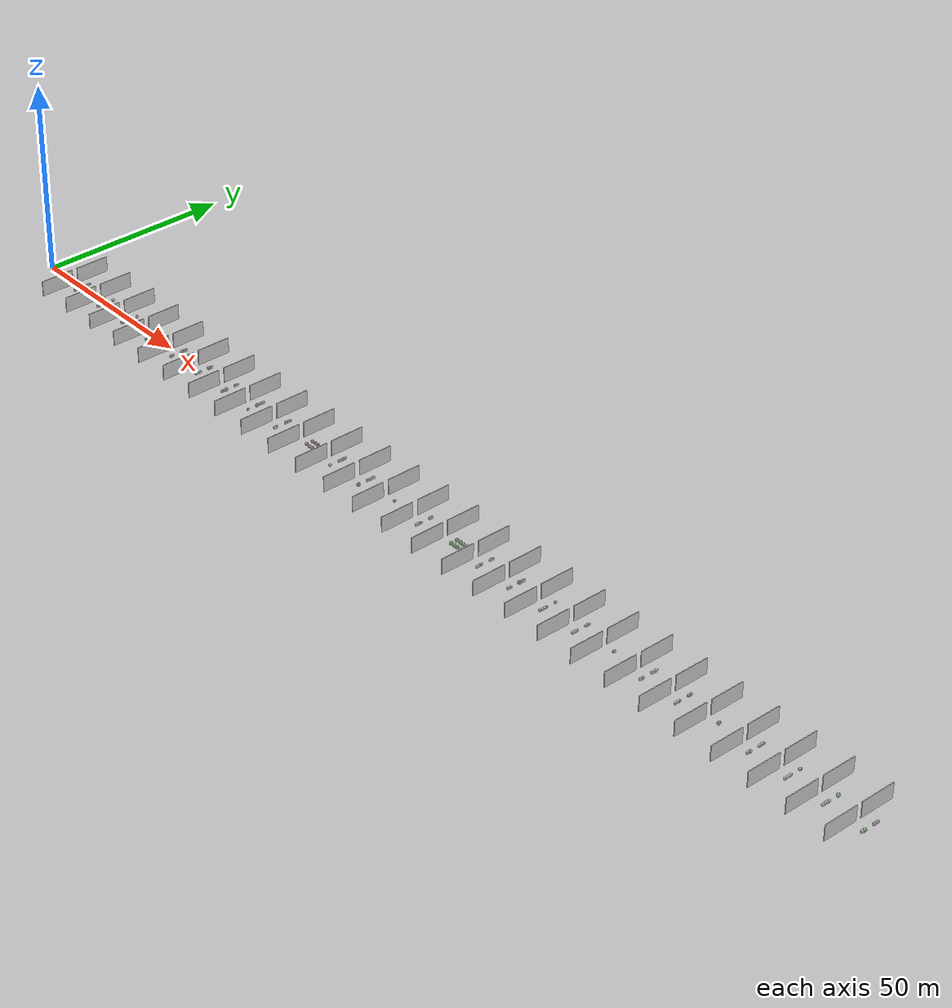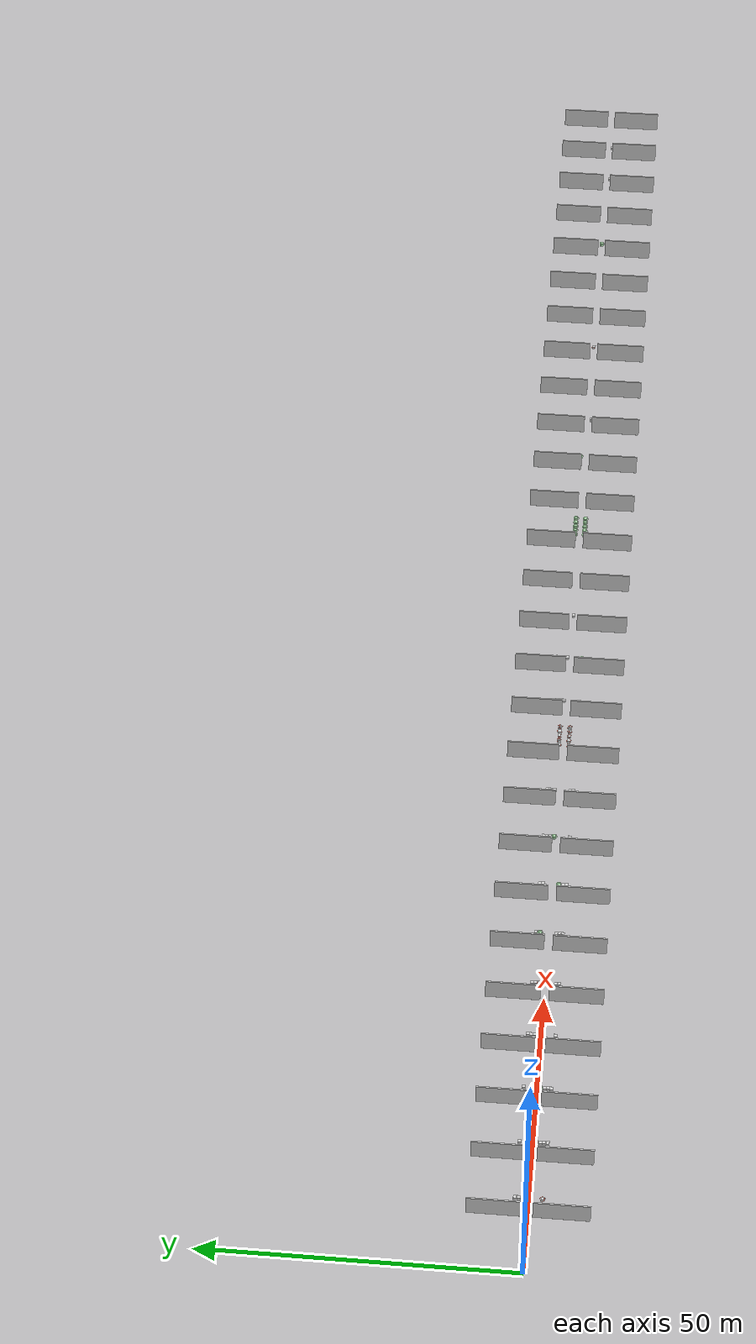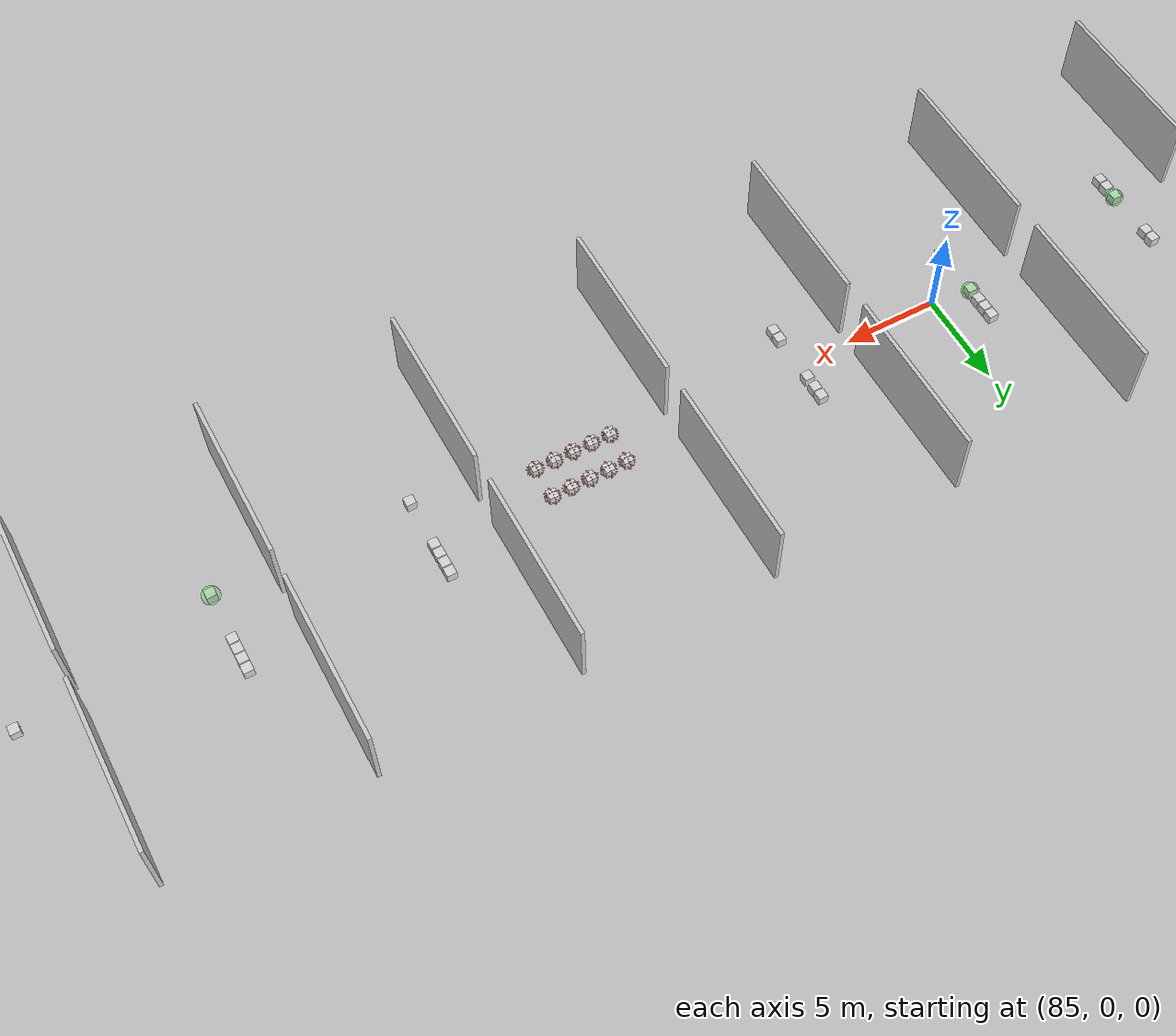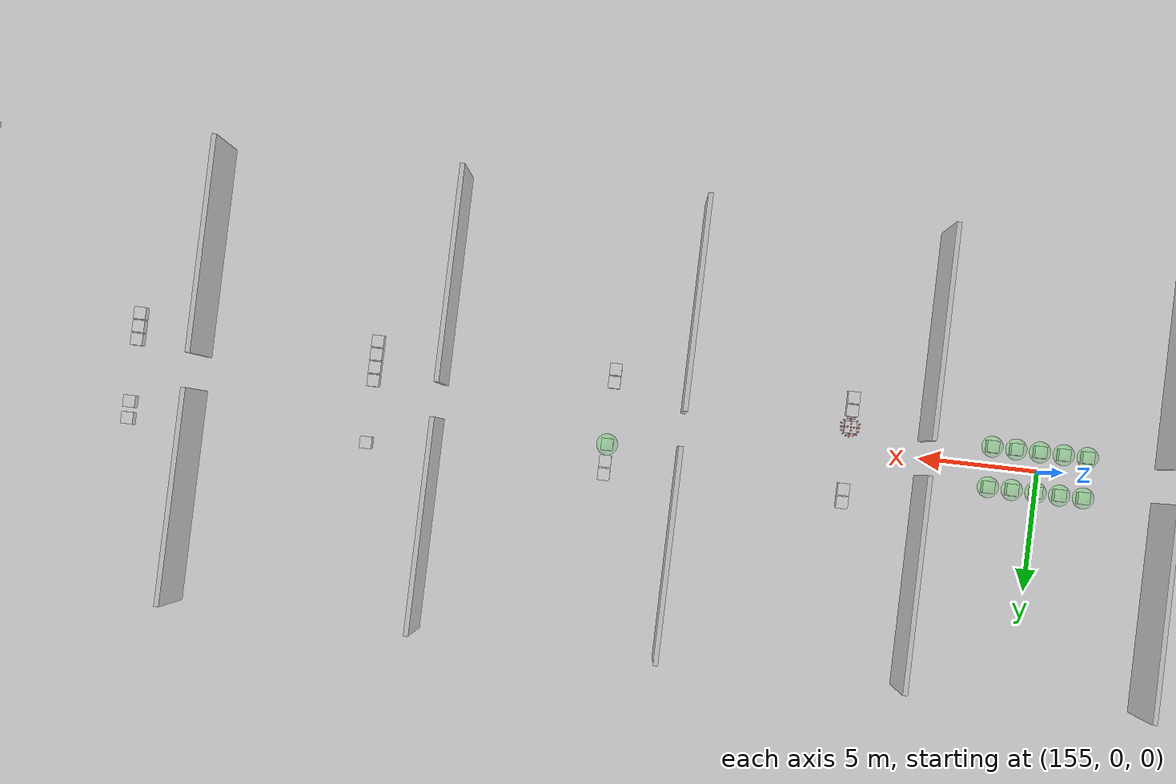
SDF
<?xml version="1.0" ?>
<sdf version="1.6">
  <model name="continuous_track_1">
    <static>true</static>

    <include>
      <name>study_track_gate_block</name>
      <uri>model://study_track_gate_block</uri>
      <static>false</static>
      <pose>10.0 0 0 0 0 0</pose>
    </include>
    <include>
      <name>trap_c_4_r_4_m</name>
      <uri>model://trap_c_4_r_4_m</uri>
      <static>false</static>
      <pose>13.0 0 0.000000 0 0 0</pose>
    </include>
    <include>
      <name>study_track_gate_block</name>
      <uri>model://study_track_gate_block</uri>
      <static>false</static>
      <pose>20.0 0 0 0 0 0</pose>
    </include>
    <include>
      <name>trap_c_4_r_3</name>
      <uri>model://trap_c_4_r_3</uri>
      <static>false</static>
      <pose>23.0 0 0.000000 0 0 0</pose>
    </include>
    <include>
      <name>study_track_gate_block</name>
      <uri>model://study_track_gate_block</uri>
      <static>false</static>
      <pose>30.0 0 0 0 0 0</pose>
    </include>
    <include>
      <name>trap_c_4_a_3</name>
      <uri>model://trap_c_4_a_3</uri>
      <static>false</static>
      <pose>33.0 0 0.000000 0 0 0</pose>
    </include>
    <include>
      <name>study_track_gate_block</name>
      <uri>model://study_track_gate_block</uri>
      <static>false</static>
      <pose>40.0 0 0 0 0 0</pose>
    </include>
    <include>
      <name>trap_c_4_r_3_m</name>
      <uri>model://trap_c_4_r_3_m</uri>
      <static>false</static>
      <pose>43.0 0 0.000000 0 0 0</pose>
    </include>
    <include>
      <name>study_track_gate_block</name>
      <uri>model://study_track_gate_block</uri>
      <static>false</static>
      <pose>50.0 0 0 0 0 0</pose>
    </include>
    <include>
      <name>trap_c_4_r_2_m</name>
      <uri>model://trap_c_4_r_2_m</uri>
      <static>false</static>
      <pose>53.0 0 0.000000 0 0 0</pose>
    </include>
    <include>
      <name>study_track_gate_block</name>
      <uri>model://study_track_gate_block</uri>
      <static>false</static>
      <pose>60.0 0 0 0 0 0</pose>
    </include>
    <include>
      <name>trap_c_4_a_1</name>
      <uri>model://trap_c_4_a_1</uri>
      <static>false</static>
      <pose>63.0 0 0.000000 0 0 0</pose>
    </include>
    <include>
      <name>study_track_gate_block</name>
      <uri>model://study_track_gate_block</uri>
      <static>false</static>
      <pose>70.0 0 0 0 0 0</pose>
    </include>
    <include>
      <name>trap_c_4_a_2</name>
      <uri>model://trap_c_4_a_2</uri>
      <static>false</static>
      <pose>73.0 0 0.000000 0 0 0</pose>
    </include>
    <include>
      <name>study_track_gate_block</name>
      <uri>model://study_track_gate_block</uri>
      <static>false</static>
      <pose>80.0 0 0 0 0 0</pose>
    </include>
    <include>
      <name>trap_c_4_a_3_m</name>
      <uri>model://trap_c_4_a_3_m</uri>
      <static>false</static>
      <pose>83.0 0 0.000000 0 0 0</pose>
    </include>
    <include>
      <name>study_track_gate_block</name>
      <uri>model://study_track_gate_block</uri>
      <static>false</static>
      <pose>90.0 0 0 0 0 0</pose>
    </include>
    <include>
      <name>trap_c_4_n_1_m</name>
      <uri>model://trap_c_4_n_1_m</uri>
      <static>false</static>
      <pose>93.0 0 0.000000 0 0 0</pose>
    </include>
    <include>
      <name>study_track_gate_block</name>
      <uri>model://study_track_gate_block</uri>
      <static>false</static>
      <pose>100.0 0 0 0 0 0</pose>
    </include>
    <include>
      <name>trap_c_3_r</name>
      <uri>model://trap_c_3_r</uri>
      <static>false</static>
      <pose>103.0 0 0.000000 0 0 0</pose>
    </include>
    <include>
      <name>study_track_gate_block</name>
      <uri>model://study_track_gate_block</uri>
      <static>false</static>
      <pose>110.0 0 0 0 0 0</pose>
    </include>
    <include>
      <name>trap_c_4_n_3_m</name>
      <uri>model://trap_c_4_n_3_m</uri>
      <static>false</static>
      <pose>113.0 0 0.000000 0 0 0</pose>
    </include>
    <include>
      <name>study_track_gate_block</name>
      <uri>model://study_track_gate_block</uri>
      <static>false</static>
      <pose>120.0 0 0 0 0 0</pose>
    </include>
    <include>
      <name>trap_c_4_a_4_m</name>
      <uri>model://trap_c_4_a_4_m</uri>
      <static>false</static>
      <pose>123.0 0 0.000000 0 0 0</pose>
    </include>
    <include>
      <name>study_track_gate_block</name>
      <uri>model://study_track_gate_block</uri>
      <static>false</static>
      <pose>130.0 0 0 0 0 0</pose>
    </include>
    <include>
      <name>vis_cue_normal</name>
      <uri>model://vis_cue_normal</uri>
      <static>false</static>
      <pose>133.0 0 0.250000 0 0 0</pose>
    </include>
    <include>
      <name>study_track_gate_block</name>
      <uri>model://study_track_gate_block</uri>
      <static>false</static>
      <pose>140.0 0 0 0 0 0</pose>
    </include>
    <include>
      <name>trap_c_4_n_1</name>
      <uri>model://trap_c_4_n_1</uri>
      <static>false</static>
      <pose>143.0 0 0.000000 0 0 0</pose>
    </include>
    <include>
      <name>study_track_gate_block</name>
      <uri>model://study_track_gate_block</uri>
      <static>false</static>
      <pose>150.0 0 0 0 0 0</pose>
    </include>
    <include>
      <name>trap_c_3_a</name>
      <uri>model://trap_c_3_a</uri>
      <static>false</static>
      <pose>153.0 0 0.000000 0 0 0</pose>
    </include>
    <include>
      <name>study_track_gate_block</name>
      <uri>model://study_track_gate_block</uri>
      <static>false</static>
      <pose>160.0 0 0 0 0 0</pose>
    </include>
    <include>
      <name>trap_c_4_r_2</name>
      <uri>model://trap_c_4_r_2</uri>
      <static>false</static>
      <pose>163.0 0 0.000000 0 0 0</pose>
    </include>
    <include>
      <name>study_track_gate_block</name>
      <uri>model://study_track_gate_block</uri>
      <static>false</static>
      <pose>170.0 0 0 0 0 0</pose>
    </include>
    <include>
      <name>trap_c_4_a_2_m</name>
      <uri>model://trap_c_4_a_2_m</uri>
      <static>false</static>
      <pose>173.0 0 0.000000 0 0 0</pose>
    </include>
    <include>
      <name>study_track_gate_block</name>
      <uri>model://study_track_gate_block</uri>
      <static>false</static>
      <pose>180.0 0 0 0 0 0</pose>
    </include>
    <include>
      <name>trap_c_4_n_3</name>
      <uri>model://trap_c_4_n_3</uri>
      <static>false</static>
      <pose>183.0 0 0.000000 0 0 0</pose>
    </include>
    <include>
      <name>study_track_gate_block</name>
      <uri>model://study_track_gate_block</uri>
      <static>false</static>
      <pose>190.0 0 0 0 0 0</pose>
    </include>
    <include>
      <name>trap_c_4_n_2</name>
      <uri>model://trap_c_4_n_2</uri>
      <static>false</static>
      <pose>193.0 0 0.000000 0 0 0</pose>
    </include>
    <include>
      <name>study_track_gate_block</name>
      <uri>model://study_track_gate_block</uri>
      <static>false</static>
      <pose>200.0 0 0 0 0 0</pose>
    </include>
    <include>
      <name>vis_cue_repel</name>
      <uri>model://vis_cue_repel</uri>
      <static>false</static>
      <pose>203.0 0 0.250000 0 0 0</pose>
    </include>
    <include>
      <name>study_track_gate_block</name>
      <uri>model://study_track_gate_block</uri>
      <static>false</static>
      <pose>210.0 0 0 0 0 0</pose>
    </include>
    <include>
      <name>trap_c_4_n_2_m</name>
      <uri>model://trap_c_4_n_2_m</uri>
      <static>false</static>
      <pose>213.0 0 0.000000 0 0 0</pose>
    </include>
    <include>
      <name>study_track_gate_block</name>
      <uri>model://study_track_gate_block</uri>
      <static>false</static>
      <pose>220.0 0 0 0 0 0</pose>
    </include>
    <include>
      <name>trap_c_4_r_1</name>
      <uri>model://trap_c_4_r_1</uri>
      <static>false</static>
      <pose>223.0 0 0.000000 0 0 0</pose>
    </include>
    <include>
      <name>study_track_gate_block</name>
      <uri>model://study_track_gate_block</uri>
      <static>false</static>
      <pose>230.0 0 0 0 0 0</pose>
    </include>
    <include>
      <name>vis_cue_attract</name>
      <uri>model://vis_cue_attract</uri>
      <static>false</static>
      <pose>233.0 0 0.250000 0 0 0</pose>
    </include>
    <include>
      <name>study_track_gate_block</name>
      <uri>model://study_track_gate_block</uri>
      <static>false</static>
      <pose>240.0 0 0 0 0 0</pose>
    </include>
    <include>
      <name>trap_c_4_r_1_m</name>
      <uri>model://trap_c_4_r_1_m</uri>
      <static>false</static>
      <pose>243.0 0 0.000000 0 0 0</pose>
    </include>
    <include>
      <name>study_track_gate_block</name>
      <uri>model://study_track_gate_block</uri>
      <static>false</static>
      <pose>250.0 0 0 0 0 0</pose>
    </include>
    <include>
      <name>trap_c_4_r_4</name>
      <uri>model://trap_c_4_r_4</uri>
      <static>false</static>
      <pose>253.0 0 0.000000 0 0 0</pose>
    </include>
    <include>
      <name>study_track_gate_block</name>
      <uri>model://study_track_gate_block</uri>
      <static>false</static>
      <pose>260.0 0 0 0 0 0</pose>
    </include>
    <include>
      <name>trap_c_4_a_4</name>
      <uri>model://trap_c_4_a_4</uri>
      <static>false</static>
      <pose>263.0 0 0.000000 0 0 0</pose>
    </include>
    <include>
      <name>study_track_gate_block</name>
      <uri>model://study_track_gate_block</uri>
      <static>false</static>
      <pose>270.0 0 0 0 0 0</pose>
    </include>
    <include>
      <name>trap_c_4_a_1_m</name>
      <uri>model://trap_c_4_a_1_m</uri>
      <static>false</static>
      <pose>273.0 0 0.000000 0 0 0</pose>
    </include>

  </model>
</sdf>

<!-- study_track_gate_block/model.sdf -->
<sdf version="1.6">
  <model name="study_track_gate_block">
    <static>true</static>

    <link name="gate_l">
      <pose>0 -5.1 2 0 0 0</pose>
      <collision name='collision'>
        <geometry>
          <box>
            <size>0.2 8.8 4</size>
          </box>
        </geometry>
        <max_contacts>10</max_contacts>
      </collision>
      <visual name='visual'>
        <cast_shadows>1</cast_shadows>
        <geometry>
          <box>
            <size>0.2 8.8 4</size>
          </box>
        </geometry>
        <material>
          <ambient>0.7 0.7 0.7 1</ambient>
          <diffuse>0.8 0.8 0.8 1</diffuse>
          <specular>0.1 0.1 0.1 1</specular>
          <emissive>0 0 0 0</emissive>
        </material>
      </visual>
    </link>

    <link name="gate_r">
      <pose>0 5.1 2 0 0 0</pose>
      <collision name='collision'>
        <geometry>
          <box>
            <size>0.2 8.8 4</size>
          </box>
        </geometry>
        <max_contacts>10</max_contacts>
      </collision>
      <visual name='visual'>
        <cast_shadows>1</cast_shadows>
        <geometry>
          <box>
            <size>0.2 8.8 4</size>
          </box>
        </geometry>
        <material>
          <ambient>0.7 0.7 0.7 1</ambient>
          <diffuse>0.8 0.8 0.8 1</diffuse>
          <specular>0.1 0.1 0.1 1</specular>
          <emissive>0 0 0 0</emissive>
        </material>
      </visual>
    </link>

  </model>
</sdf>

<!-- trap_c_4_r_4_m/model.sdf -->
<sdf version="1.6">
  <model name="trap_cont_4_r_4_m">
    <static>false</static>

    <include>
      <name>normal_cue_3</name>
      <uri>model://vis_cue_normal</uri>
      <pose>0 2.20 0.25 0 0 0</pose>
    </include>
    <include>
      <name>normal_cue_2</name>
      <uri>model://vis_cue_normal</uri>
      <pose>0 1.65 0.25 0 0 0</pose>
    </include>
    <include>
      <name>normal_cue_1</name>
      <uri>model://vis_cue_normal</uri>
      <pose>0 1.1 0.25 0 0 0</pose>
    </include>
    <include>
      <name>op_l</name>
      <uri>model://vis_cue_normal</uri>
      <pose>0 0.55 0.25 0 0 0</pose>
    </include>
    <include>
      <name>op_r</name>
      <uri>model://vis_cue_repel</uri>
      <pose>0 -2.05 0.25 0 0 0</pose>
    </include>

  </model>
</sdf>

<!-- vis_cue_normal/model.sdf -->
<sdf version="1.6">
  <model name="vis_cue_normal">
    <static>false</static>
    <pose>0 0 0.25 0 0 0</pose>
    <link name='vis_cue_normal'>
      <inertial>
        <mass>1</mass>
        <inertia>
          <ixx>0.166667</ixx>
          <ixy>0</ixy>
          <ixz>0</ixz>
          <iyy>0.166667</iyy>
          <iyz>0</iyz>
          <izz>0.166667</izz>
        </inertia>
      </inertial>
      <collision name='collision'>
        <geometry>
          <box>
            <size>0.5 0.5 0.5</size>
          </box>
        </geometry>
        <max_contacts>10</max_contacts>
        <surface>
          <contact>
            <ode/>
          </contact>
          <bounce/>
          <friction>
            <torsional>
              <ode/>
            </torsional>
            <ode/>
          </friction>
        </surface>
      </collision>
      <visual name='box_visual'>
        <geometry>
          <box>
            <size>0.5 0.5 0.5</size>
          </box>
        </geometry>
        <material>
          <ambient>0.85 0.85 0.85 1</ambient>
          <diffuse>0.85 0.85 0.85 1</diffuse>
          <specular>0.15 0.15 0.15 1</specular>
          <emissive>0 0 0 0</emissive>
        </material>
      </visual>
      <self_collide>0</self_collide>
      <kinematic>0</kinematic>
    </link>
  </model>
</sdf>

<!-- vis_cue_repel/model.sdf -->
<sdf version="1.6">
  <model name="vis_cue_repel">
    <static>false</static>
    <pose>0 0 0.25 0 0 0</pose>
    <link name='vis_cue_repel'>
      <inertial>
        <mass>1</mass>
        <inertia>
          <ixx>0.166667</ixx>
          <ixy>0</ixy>
          <ixz>0</ixz>
          <iyy>0.166667</iyy>
          <iyz>0</iyz>
          <izz>0.166667</izz>
        </inertia>
      </inertial>
      <collision name='collision'>
        <geometry>
          <box>
            <size>0.5 0.5 0.5</size>
          </box>
        </geometry>
        <max_contacts>10</max_contacts>
        <surface>
          <contact>
            <ode/>
          </contact>
          <bounce/>
          <friction>
            <torsional>
              <ode/>
            </torsional>
            <ode/>
          </friction>
        </surface>
      </collision>
      <visual name='box_visual'>
        <geometry>
          <box>
            <size>0.5 0.5 0.5</size>
          </box>
        </geometry>
        <material>
          <ambient>0.85 0.85 0.85 1</ambient>
          <diffuse>0.85 0.85 0.85 1</diffuse>
          <specular>0.15 0.15 0.15 1</specular>
          <emissive>0 0 0 0</emissive>
        </material>
      </visual>
      <visual name='cue_visual_1'>
        <pose>0 0 0 1.5708 0 1.5708</pose>
        <geometry>
          <mesh>
            <uri>model://vis_cue_repel/meshes/repelling_cue.stl</uri>
            <scale>0.36 0.36 0.36</scale>
          </mesh>
        </geometry>
        <material>
          <ambient>1 0.3 0.2 0.6</ambient>
          <diffuse>1 0.3 0.2 0.6</diffuse>
          <specular>1 0.3 0.2 0.7</specular>
          <emissive>0.5 0 0 0.1</emissive>
        </material>
      </visual>
      <visual name='cue_visual_2'>
        <pose>0 0 0 1.5708 0 0</pose>
        <geometry>
          <mesh>
            <uri>model://vis_cue_repel/meshes/repelling_cue.stl</uri>
            <scale>0.36 0.36 0.36</scale>
          </mesh>
        </geometry>
        <material>
          <ambient>1 0.3 0.2 0.6</ambient>
          <diffuse>1 0.3 0.2 0.6</diffuse>
          <specular>1 0.3 0.2 0.7</specular>
          <emissive>0.5 0 0 0.1</emissive>
        </material>
      </visual>
      <visual name='cue_visual_3'>
        <pose>0 0 0 0 0 0</pose>
        <geometry>
          <mesh>
            <uri>model://vis_cue_repel/meshes/repelling_cue.stl</uri>
            <scale>0.36 0.36 0.36</scale>
          </mesh>
        </geometry>
        <material>
          <ambient>1 0.3 0.2 0.6</ambient>
          <diffuse>1 0.3 0.2 0.6</diffuse>
          <specular>1 0.3 0.2 0.7</specular>
          <emissive>0.5 0 0 0.1</emissive>
        </material>
      </visual>
      <self_collide>0</self_collide>
      <kinematic>0</kinematic>
    </link>
  </model>
</sdf>

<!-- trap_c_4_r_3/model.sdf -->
<sdf version="1.6">
  <model name="trap_cont_4_r_3">
    <static>false</static>

    <include>
      <name>normal_cue_0</name>
      <uri>model://vis_cue_normal</uri>
      <pose>0 -2.20 0.25 0 0 0</pose>
    </include>
    <include>
      <name>normal_cue_1</name>
      <uri>model://vis_cue_normal</uri>
      <pose>0 -1.65 0.25 0 0 0</pose>
    </include>
    <include>
      <name>normal_cue_2</name>
      <uri>model://vis_cue_normal</uri>
      <pose>0 -1.1 0.25 0 0 0</pose>
    </include>
    <include>
      <name>op_r</name>
      <uri>model://vis_cue_repel</uri>
      <pose>0 -0.4 0.25 0 0 0</pose>
    </include>
    <include>
      <name>op_l</name>
      <uri>model://vis_cue_normal</uri>
      <pose>0 2.2 0.25 0 0 0</pose>
    </include>

  </model>
</sdf>

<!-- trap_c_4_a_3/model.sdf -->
<sdf version="1.6">
  <model name="trap_cont_4_a_3">
    <static>false</static>

    <include>
      <name>normal_cue_0</name>
      <uri>model://vis_cue_normal</uri>
      <pose>0 -2.20 0.25 0 0 0</pose>
    </include>
    <include>
      <name>normal_cue_1</name>
      <uri>model://vis_cue_normal</uri>
      <pose>0 -1.65 0.25 0 0 0</pose>
    </include>
    <include>
      <name>normal_cue_2</name>
      <uri>model://vis_cue_normal</uri>
      <pose>0 -1.1 0.25 0 0 0</pose>
    </include>
    <include>
      <name>op_r</name>
      <uri>model://vis_cue_attract</uri>
      <pose>0 -0.4 0.25 0 0 0</pose>
    </include>
    <include>
      <name>op_l</name>
      <uri>model://vis_cue_normal</uri>
      <pose>0 2.2 0.25 0 0 0</pose>
    </include>

  </model>
</sdf>

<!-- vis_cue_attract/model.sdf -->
<sdf version="1.6">
  <model name="vis_cue_attract">
    <static>false</static>
    <pose>0 0 0.25 0 0 0</pose>
    <link name='vis_cue_attract'>
      <inertial>
        <mass>1</mass>
        <inertia>
          <ixx>0.166667</ixx>
          <ixy>0</ixy>
          <ixz>0</ixz>
          <iyy>0.166667</iyy>
          <iyz>0</iyz>
          <izz>0.166667</izz>
        </inertia>
      </inertial>
      <collision name='collision'>
        <geometry>
          <box>
            <size>0.5 0.5 0.5</size>
          </box>
        </geometry>
        <max_contacts>10</max_contacts>
        <surface>
          <contact>
            <ode/>
          </contact>
          <bounce/>
          <friction>
            <torsional>
              <ode/>
            </torsional>
            <ode/>
          </friction>
        </surface>
      </collision>
      <visual name='box_visual'>
        <geometry>
          <box>
            <size>0.5 0.5 0.5</size>
          </box>
        </geometry>
        <material>
          <ambient>0.85 0.85 0.85 1</ambient>
          <diffuse>0.85 0.85 0.85 1</diffuse>
          <specular>0.15 0.15 0.15 1</specular>
          <emissive>0 0 0 0</emissive>
        </material>
      </visual>
      <visual name='cue_visual'>
        <geometry>
          <mesh>
            <uri>model://vis_cue_attract/meshes/sphere.stl</uri>
            <scale>0.9 0.9 0.9</scale>
          </mesh>
        </geometry>
        <material>
          <ambient>0 1 0 0.10</ambient>
          <diffuse>0 1 0 0.20</diffuse>
          <specular>0 1 0 0.20</specular>
          <emissive>0 1 0 0.1</emissive>
        </material>
      </visual>
      <self_collide>0</self_collide>
      <kinematic>0</kinematic>
    </link>
  </model>
</sdf>

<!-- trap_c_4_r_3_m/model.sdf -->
<sdf version="1.6">
  <model name="trap_cont_4_r_3_m">
    <static>false</static>

    <include>
      <name>normal_cue_3</name>
      <uri>model://vis_cue_normal</uri>
      <pose>0 2.20 0.25 0 0 0</pose>
    </include>
    <include>
      <name>normal_cue_2</name>
      <uri>model://vis_cue_normal</uri>
      <pose>0 1.65 0.25 0 0 0</pose>
    </include>
    <include>
      <name>normal_cue_1</name>
      <uri>model://vis_cue_normal</uri>
      <pose>0 1.1 0.25 0 0 0</pose>
    </include>
    <include>
      <name>op_l</name>
      <uri>model://vis_cue_repel</uri>
      <pose>0 0.4 0.25 0 0 0</pose>
    </include>
    <include>
      <name>op_r</name>
      <uri>model://vis_cue_normal</uri>
      <pose>0 -2.2 0.25 0 0 0</pose>
    </include>

  </model>
</sdf>

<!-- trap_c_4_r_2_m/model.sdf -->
<sdf version="1.6">
  <model name="trap_cont_4_r_2_m">
    <static>false</static>

    <include>
      <name>normal_cue_3</name>
      <uri>model://vis_cue_normal</uri>
      <pose>0 2.20 0.25 0 0 0</pose>
    </include>
    <include>
      <name>normal_cue_2</name>
      <uri>model://vis_cue_normal</uri>
      <pose>0 1.65 0.25 0 0 0</pose>
    </include>
    <include>
      <name>op_l</name>
      <uri>model://vis_cue_repel</uri>
      <pose>0 0.95 0.25 0 0 0</pose>
    </include>
    <include>
      <name>op_r</name>
      <uri>model://vis_cue_normal</uri>
      <pose>0 -1.65 0.25 0 0 0</pose>
    </include>
    <include>
      <name>normal_cue_0</name>
      <uri>model://vis_cue_normal</uri>
      <pose>0 -2.2 0.25 0 0 0</pose>
    </include>

  </model>
</sdf>

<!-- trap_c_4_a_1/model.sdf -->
<sdf version="1.6">
  <model name="trap_cont_4_a_1">
    <static>false</static>

    <include>
      <name>normal_cue_0</name>
      <uri>model://vis_cue_normal</uri>
      <pose>0 -2.20 0.25 0 0 0</pose>
    </include>
    <include>
      <name>normal_cue_1</name>
      <uri>model://vis_cue_normal</uri>
      <pose>0 -1.65 0.25 0 0 0</pose>
    </include>
    <include>
      <name>op_r</name>
      <uri>model://vis_cue_normal</uri>
      <pose>0 -1.1 0.25 0 0 0</pose>
    </include>
    <include>
      <name>op_l</name>
      <uri>model://vis_cue_attract</uri>
      <pose>0 1.5 0.25 0 0 0</pose>
    </include>
    <include>
      <name>normal_cue_3</name>
      <uri>model://vis_cue_normal</uri>
      <pose>0 2.2 0.25 0 0 0</pose>
    </include>

  </model>
</sdf>

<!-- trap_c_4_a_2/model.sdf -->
<sdf version="1.6">
  <model name="trap_cont_4_a_2">
    <static>false</static>

    <include>
      <name>normal_cue_0</name>
      <uri>model://vis_cue_normal</uri>
      <pose>0 -2.20 0.25 0 0 0</pose>
    </include>
    <include>
      <name>normal_cue_1</name>
      <uri>model://vis_cue_normal</uri>
      <pose>0 -1.65 0.25 0 0 0</pose>
    </include>
    <include>
      <name>op_r</name>
      <uri>model://vis_cue_attract</uri>
      <pose>0 -0.95 0.25 0 0 0</pose>
    </include>
    <include>
      <name>op_l</name>
      <uri>model://vis_cue_normal</uri>
      <pose>0 1.65 0.25 0 0 0</pose>
    </include>
    <include>
      <name>normal_cue_3</name>
      <uri>model://vis_cue_normal</uri>
      <pose>0 2.2 0.25 0 0 0</pose>
    </include>

  </model>
</sdf>

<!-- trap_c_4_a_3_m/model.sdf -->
<sdf version="1.6">
  <model name="trap_cont_4_a_3_m">
    <static>false</static>

    <include>
      <name>normal_cue_3</name>
      <uri>model://vis_cue_normal</uri>
      <pose>0 2.20 0.25 0 0 0</pose>
    </include>
    <include>
      <name>normal_cue_2</name>
      <uri>model://vis_cue_normal</uri>
      <pose>0 1.65 0.25 0 0 0</pose>
    </include>
    <include>
      <name>normal_cue_2</name>
      <uri>model://vis_cue_normal</uri>
      <pose>0 1.1 0.25 0 0 0</pose>
    </include>
    <include>
      <name>op_l</name>
      <uri>model://vis_cue_attract</uri>
      <pose>0 0.4 0.25 0 0 0</pose>
    </include>
    <include>
      <name>op_r</name>
      <uri>model://vis_cue_normal</uri>
      <pose>0 -2.2 0.25 0 0 0</pose>
    </include>

  </model>
</sdf>

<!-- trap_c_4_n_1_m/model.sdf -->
<sdf version="1.6">
  <model name="trap_cont_4_n_1_m">
    <static>false</static>

    <include>
      <name>normal_cue_4</name>
      <uri>model://vis_cue_normal</uri>
      <pose>0 2.20 0.25 0 0 0</pose>
    </include>
    <include>
      <name>normal_cue_3</name>
      <uri>model://vis_cue_normal</uri>
      <pose>0 1.65 0.25 0 0 0</pose>
    </include>
    <include>
      <name>op_l</name>
      <uri>model://vis_cue_normal</uri>
      <pose>0 0.95 0.25 0 0 0</pose>
    </include>
    <include>
      <name>op_r</name>
      <uri>model://vis_cue_normal</uri>
      <pose>0 -1.65 0.25 0 0 0</pose>
    </include>
    <include>
      <name>normal_cue_0</name>
      <uri>model://vis_cue_normal</uri>
      <pose>0 -2.2 0.25 0 0 0</pose>
    </include>

  </model>
</sdf>

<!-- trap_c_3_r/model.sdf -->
<sdf version="1.6">
  <model name="trap_c_3_r">
    <static>true</static>

    <include>
      <name>op_r</name>
      <uri>model://vis_cue_repel</uri>
      <pose>0 -0.85 0.25 0 0 0</pose>
    </include>
    <include>
      <name>op_l</name>
      <uri>model://vis_cue_repel</uri>
      <pose>0 0.85 0.25 0 0 0</pose>
    </include>
    <include>
      <name>repelling_cue_2</name>
      <uri>model://vis_cue_repel</uri>
      <pose>1 -0.85 0.25 0 0 0</pose>
    </include>
    <include>
      <name>repelling_cue_3</name>
      <uri>model://vis_cue_repel</uri>
      <pose>1 0.85 0.25 0 0 0</pose>
    </include>
    <include>
      <name>repelling_cue_4</name>
      <uri>model://vis_cue_repel</uri>
      <pose>2 -0.85 0.25 0 0 0</pose>
    </include>
    <include>
      <name>repelling_cue_5</name>
      <uri>model://vis_cue_repel</uri>
      <pose>2 0.85 0.25 0 0 0</pose>
    </include>
    <include>
      <name>repelling_cue_6</name>
      <uri>model://vis_cue_repel</uri>
      <pose>3 -0.85 0.25 0 0 0</pose>
    </include>
    <include>
      <name>repelling_cue_7</name>
      <uri>model://vis_cue_repel</uri>
      <pose>3 0.85 0.25 0 0 0</pose>
    </include>
    <include>
      <name>repelling_cue_8</name>
      <uri>model://vis_cue_repel</uri>
      <pose>4 -0.85 0.25 0 0 0</pose>
    </include>
    <include>
      <name>repelling_cue_9</name>
      <uri>model://vis_cue_repel</uri>
      <pose>4 0.85 0.25 0 0 0</pose>
    </include>

  </model>
</sdf>

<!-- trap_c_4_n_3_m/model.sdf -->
<sdf version="1.6">
  <model name="trap_cont_4_n_3_m">
    <static>false</static>

    <include>
      <name>normal_cue_4</name>
      <uri>model://vis_cue_normal</uri>
      <pose>0 2.20 0.25 0 0 0</pose>
    </include>
    <include>
      <name>normal_cue_3</name>
      <uri>model://vis_cue_normal</uri>
      <pose>0 1.65 0.25 0 0 0</pose>
    </include>
    <include>
      <name>normal_cue_2</name>
      <uri>model://vis_cue_normal</uri>
      <pose>0 1.1 0.25 0 0 0</pose>
    </include>
    <include>
      <name>op_l</name>
      <uri>model://vis_cue_normal</uri>
      <pose>0 0.55 0.25 0 0 0</pose>
    </include>
    <include>
      <name>op_r</name>
      <uri>model://vis_cue_normal</uri>
      <pose>0 -2.05 0.25 0 0 0</pose>
    </include>

  </model>
</sdf>

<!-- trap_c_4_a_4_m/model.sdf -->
<sdf version="1.6">
  <model name="trap_cont_4_a_4_m">
    <static>false</static>

    <include>
      <name>normal_cue_3</name>
      <uri>model://vis_cue_normal</uri>
      <pose>0 2.20 0.25 0 0 0</pose>
    </include>
    <include>
      <name>normal_cue_2</name>
      <uri>model://vis_cue_normal</uri>
      <pose>0 1.65 0.25 0 0 0</pose>
    </include>
    <include>
      <name>normal_cue_2</name>
      <uri>model://vis_cue_normal</uri>
      <pose>0 1.1 0.25 0 0 0</pose>
    </include>
    <include>
      <name>op_l</name>
      <uri>model://vis_cue_normal</uri>
      <pose>0 0.55 0.25 0 0 0</pose>
    </include>
    <include>
      <name>op_r</name>
      <uri>model://vis_cue_attract</uri>
      <pose>0 -2.05 0.25 0 0 0</pose>
    </include>

  </model>
</sdf>

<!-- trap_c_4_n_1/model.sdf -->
<sdf version="1.6">
  <model name="trap_cont_4_n_1">
    <static>false</static>

    <include>
      <name>normal_cue_1</name>
      <uri>model://vis_cue_normal</uri>
      <pose>0 -2.20 0.25 0 0 0</pose>
    </include>
    <include>
      <name>normal_cue_2</name>
      <uri>model://vis_cue_normal</uri>
      <pose>0 -1.65 0.25 0 0 0</pose>
    </include>
    <include>
      <name>op_r</name>
      <uri>model://vis_cue_normal</uri>
      <pose>0 -0.95 0.25 0 0 0</pose>
    </include>
    <include>
      <name>op_l</name>
      <uri>model://vis_cue_normal</uri>
      <pose>0 1.65 0.25 0 0 0</pose>
    </include>
    <include>
      <name>normal_cue_5</name>
      <uri>model://vis_cue_normal</uri>
      <pose>0 2.2 0.25 0 0 0</pose>
    </include>

  </model>
</sdf>

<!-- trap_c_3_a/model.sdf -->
<sdf version="1.6">
  <model name="trap_c_3_a">
    <static>true</static>

    <include>
      <name>op_r</name>
      <uri>model://vis_cue_attract</uri>
      <pose>0 -0.85 0.25 0 0 0</pose>
    </include>
    <include>
      <name>op_l</name>
      <uri>model://vis_cue_attract</uri>
      <pose>0 0.85 0.25 0 0 0</pose>
    </include>
    <include>
      <name>attracting_cue_2</name>
      <uri>model://vis_cue_attract</uri>
      <pose>1 -0.85 0.25 0 0 0</pose>
    </include>
    <include>
      <name>attracting_cue_3</name>
      <uri>model://vis_cue_attract</uri>
      <pose>1 0.85 0.25 0 0 0</pose>
    </include>
    <include>
      <name>attracting_cue_4</name>
      <uri>model://vis_cue_attract</uri>
      <pose>2 -0.85 0.25 0 0 0</pose>
    </include>
    <include>
      <name>attracting_cue_5</name>
      <uri>model://vis_cue_attract</uri>
      <pose>2 0.85 0.25 0 0 0</pose>
    </include>
    <include>
      <name>attracting_cue_6</name>
      <uri>model://vis_cue_attract</uri>
      <pose>3 -0.85 0.25 0 0 0</pose>
    </include>
    <include>
      <name>attracting_cue_7</name>
      <uri>model://vis_cue_attract</uri>
      <pose>3 0.85 0.25 0 0 0</pose>
    </include>
    <include>
      <name>attracting_cue_8</name>
      <uri>model://vis_cue_attract</uri>
      <pose>4 -0.85 0.25 0 0 0</pose>
    </include>
    <include>
      <name>attracting_cue_9</name>
      <uri>model://vis_cue_attract</uri>
      <pose>4 0.85 0.25 0 0 0</pose>
    </include>

  </model>
</sdf>

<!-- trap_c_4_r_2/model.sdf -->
<sdf version="1.6">
  <model name="trap_cont_4_r_2">
    <static>false</static>

    <include>
      <name>normal_cue_0</name>
      <uri>model://vis_cue_normal</uri>
      <pose>0 -2.20 0.25 0 0 0</pose>
    </include>
    <include>
      <name>normal_cue_1</name>
      <uri>model://vis_cue_normal</uri>
      <pose>0 -1.65 0.25 0 0 0</pose>
    </include>
    <include>
      <name>op_r</name>
      <uri>model://vis_cue_repel</uri>
      <pose>0 -0.95 0.25 0 0 0</pose>
    </include>
    <include>
      <name>op_l</name>
      <uri>model://vis_cue_normal</uri>
      <pose>0 1.65 0.25 0 0 0</pose>
    </include>
    <include>
      <name>normal_cue_3</name>
      <uri>model://vis_cue_normal</uri>
      <pose>0 2.2 0.25 0 0 0</pose>
    </include>

  </model>
</sdf>

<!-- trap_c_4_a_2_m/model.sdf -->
<sdf version="1.6">
  <model name="trap_cont_4_a_2_m">
    <static>false</static>

    <include>
      <name>normal_cue_3</name>
      <uri>model://vis_cue_normal</uri>
      <pose>0 2.20 0.25 0 0 0</pose>
    </include>
    <include>
      <name>normal_cue_2</name>
      <uri>model://vis_cue_normal</uri>
      <pose>0 1.65 0.25 0 0 0</pose>
    </include>
    <include>
      <name>op_l</name>
      <uri>model://vis_cue_attract</uri>
      <pose>0 0.95 0.25 0 0 0</pose>
    </include>
    <include>
      <name>op_r</name>
      <uri>model://vis_cue_normal</uri>
      <pose>0 -1.65 0.25 0 0 0</pose>
    </include>
    <include>
      <name>normal_cue_0</name>
      <uri>model://vis_cue_normal</uri>
      <pose>0 -2.2 0.25 0 0 0</pose>
    </include>

  </model>
</sdf>

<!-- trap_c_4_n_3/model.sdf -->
<sdf version="1.6">
  <model name="trap_cont_4_n_3">
    <static>false</static>

    <include>
      <name>normal_cue_0</name>
      <uri>model://vis_cue_normal</uri>
      <pose>0 -2.20 0.25 0 0 0</pose>
    </include>
    <include>
      <name>normal_cue_1</name>
      <uri>model://vis_cue_normal</uri>
      <pose>0 -1.65 0.25 0 0 0</pose>
    </include>
    <include>
      <name>normal_cue_2</name>
      <uri>model://vis_cue_normal</uri>
      <pose>0 -1.1 0.25 0 0 0</pose>
    </include>
    <include>
      <name>op_r</name>
      <uri>model://vis_cue_normal</uri>
      <pose>0 -0.55 0.25 0 0 0</pose>
    </include>
    <include>
      <name>op_l</name>
      <uri>model://vis_cue_normal</uri>
      <pose>0 2.05 0.25 0 0 0</pose>
    </include>

  </model>
</sdf>

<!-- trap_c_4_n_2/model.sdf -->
<sdf version="1.6">
  <model name="trap_cont_4_n_2">
    <static>false</static>

    <include>
      <name>normal_cue_1</name>
      <uri>model://vis_cue_normal</uri>
      <pose>0 -2.20 0.25 0 0 0</pose>
    </include>
    <include>
      <name>normal_cue_2</name>
      <uri>model://vis_cue_normal</uri>
      <pose>0 -1.65 0.25 0 0 0</pose>
    </include>
    <include>
      <name>op_r</name>
      <uri>model://vis_cue_normal</uri>
      <pose>0 -1.1 0.25 0 0 0</pose>
    </include>
    <include>
      <name>op_l</name>
      <uri>model://vis_cue_normal</uri>
      <pose>0 1.5 0.25 0 0 0</pose>
    </include>
    <include>
      <name>normal_cue_5</name>
      <uri>model://vis_cue_normal</uri>
      <pose>0 2.2 0.25 0 0 0</pose>
    </include>

  </model>
</sdf>

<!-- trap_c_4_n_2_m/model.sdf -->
<sdf version="1.6">
  <model name="trap_cont_4_n_2_m">
    <static>false</static>

    <include>
      <name>normal_cue_4</name>
      <uri>model://vis_cue_normal</uri>
      <pose>0 2.20 0.25 0 0 0</pose>
    </include>
    <include>
      <name>normal_cue_3</name>
      <uri>model://vis_cue_normal</uri>
      <pose>0 1.65 0.25 0 0 0</pose>
    </include>
    <include>
      <name>op_l</name>
      <uri>model://vis_cue_normal</uri>
      <pose>0 1.1 0.25 0 0 0</pose>
    </include>
    <include>
      <name>op_r</name>
      <uri>model://vis_cue_normal</uri>
      <pose>0 -1.5 0.25 0 0 0</pose>
    </include>
    <include>
      <name>normal_cue_0</name>
      <uri>model://vis_cue_normal</uri>
      <pose>0 -2.2 0.25 0 0 0</pose>
    </include>

  </model>
</sdf>

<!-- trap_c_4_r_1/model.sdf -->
<sdf version="1.6">
  <model name="trap_cont_4_r_1">
    <static>false</static>

    <include>
      <name>normal_cue_0</name>
      <uri>model://vis_cue_normal</uri>
      <pose>0 -2.20 0.25 0 0 0</pose>
    </include>
    <include>
      <name>normal_cue_1</name>
      <uri>model://vis_cue_normal</uri>
      <pose>0 -1.65 0.25 0 0 0</pose>
    </include>
    <include>
      <name>op_r</name>
      <uri>model://vis_cue_normal</uri>
      <pose>0 -1.1 0.25 0 0 0</pose>
    </include>
    <include>
      <name>op_l</name>
      <uri>model://vis_cue_repel</uri>
      <pose>0 1.5 0.25 0 0 0</pose>
    </include>
    <include>
      <name>normal_cue_3</name>
      <uri>model://vis_cue_normal</uri>
      <pose>0 2.2 0.25 0 0 0</pose>
    </include>

  </model>
</sdf>

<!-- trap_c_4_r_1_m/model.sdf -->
<sdf version="1.6">
  <model name="trap_cont_4_r_1_m">
    <static>false</static>

    <include>
      <name>normal_cue_3</name>
      <uri>model://vis_cue_normal</uri>
      <pose>0 2.20 0.25 0 0 0</pose>
    </include>
    <include>
      <name>normal_cue_2</name>
      <uri>model://vis_cue_normal</uri>
      <pose>0 1.65 0.25 0 0 0</pose>
    </include>
    <include>
      <name>op_l</name>
      <uri>model://vis_cue_normal</uri>
      <pose>0 1.1 0.25 0 0 0</pose>
    </include>
    <include>
      <name>op_r</name>
      <uri>model://vis_cue_repel</uri>
      <pose>0 -1.5 0.25 0 0 0</pose>
    </include>
    <include>
      <name>normal_cue_0</name>
      <uri>model://vis_cue_normal</uri>
      <pose>0 -2.2 0.25 0 0 0</pose>
    </include>

  </model>
</sdf>

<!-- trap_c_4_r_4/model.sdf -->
<sdf version="1.6">
  <model name="trap_cont_4_r_4">
    <static>false</static>

    <include>
      <name>normal_cue_0</name>
      <uri>model://vis_cue_normal</uri>
      <pose>0 -2.20 0.25 0 0 0</pose>
    </include>
    <include>
      <name>normal_cue_1</name>
      <uri>model://vis_cue_normal</uri>
      <pose>0 -1.65 0.25 0 0 0</pose>
    </include>
    <include>
      <name>normal_cue_2</name>
      <uri>model://vis_cue_normal</uri>
      <pose>0 -1.1 0.25 0 0 0</pose>
    </include>
    <include>
      <name>op_r</name>
      <uri>model://vis_cue_normal</uri>
      <pose>0 -0.55 0.25 0 0 0</pose>
    </include>
    <include>
      <name>op_l</name>
      <uri>model://vis_cue_repel</uri>
      <pose>0 2.05 0.25 0 0 0</pose>
    </include>

  </model>
</sdf>

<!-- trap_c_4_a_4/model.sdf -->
<sdf version="1.6">
  <model name="trap_cont_4_a_4">
    <static>false</static>

    <include>
      <name>normal_cue_0</name>
      <uri>model://vis_cue_normal</uri>
      <pose>0 -2.20 0.25 0 0 0</pose>
    </include>
    <include>
      <name>normal_cue_1</name>
      <uri>model://vis_cue_normal</uri>
      <pose>0 -1.65 0.25 0 0 0</pose>
    </include>
    <include>
      <name>normal_cue_2</name>
      <uri>model://vis_cue_normal</uri>
      <pose>0 -1.1 0.25 0 0 0</pose>
    </include>
    <include>
      <name>op_r</name>
      <uri>model://vis_cue_normal</uri>
      <pose>0 -0.55 0.25 0 0 0</pose>
    </include>
    <include>
      <name>op_l</name>
      <uri>model://vis_cue_attract</uri>
      <pose>0 2.05 0.25 0 0 0</pose>
    </include>

  </model>
</sdf>

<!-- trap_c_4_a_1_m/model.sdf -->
<sdf version="1.6">
  <model name="trap_cont_4_a_1_m">
    <static>false</static>

    <include>
      <name>normal_cue_3</name>
      <uri>model://vis_cue_normal</uri>
      <pose>0 2.20 0.25 0 0 0</pose>
    </include>
    <include>
      <name>normal_cue_2</name>
      <uri>model://vis_cue_normal</uri>
      <pose>0 1.65 0.25 0 0 0</pose>
    </include>
    <include>
      <name>op_l</name>
      <uri>model://vis_cue_normal</uri>
      <pose>0 1.1 0.25 0 0 0</pose>
    </include>
    <include>
      <name>op_r</name>
      <uri>model://vis_cue_attract</uri>
      <pose>0 -1.5 0.25 0 0 0</pose>
    </include>
    <include>
      <name>normal_cue_3</name>
      <uri>model://vis_cue_normal</uri>
      <pose>0 -2.2 0.25 0 0 0</pose>
    </include>

  </model>
</sdf>
